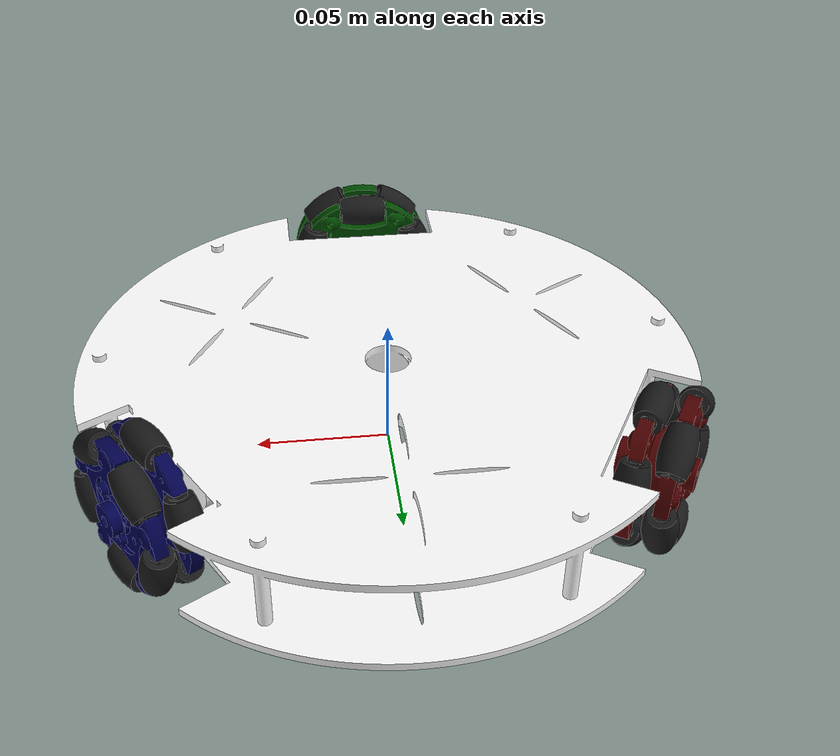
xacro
<?xml version="1.0"?>
<robot xmlns:xacro="http://www.ros.org/wiki/xacro" name="open_base">

	<xacro:include filename="$(find erobotica_omnibot)/urdf/rim.urdf.xacro"/>

	<link name="origin_link"/>
	<link name="base_link">

	<inertial>
		<mass value="0.660"/>
		<inertia
			ixx="0.0029"
			ixy="3.82830626450116e-06"
			ixz="1.95168554660843e-06"
			iyy="0.00368658386788590"
			iyz="0.000245762249215231"
			izz="0.00610900095537055"/>
		</inertial>
	<visual>
	<origin	xyz="0 0 0"  rpy="0 0 0" />
		<geometry>

			<mesh filename="package://erobotica_omnibot/mesh/chassi.stl"/>
		</geometry>
		<material name="base_material">
			<color rgba="1 1 1 1"/>
		</material>
	</visual>
	<collision>
	<origin	xyz="0 0 0"  rpy="0 0 0" />
		<geometry>

			<mesh filename="package://erobotica_omnibot/mesh/chassi.stl"/>
		</geometry>
	</collision>

	</link>
	<joint name="base_joint" type="fixed">
		<parent link="origin_link" />
		<child link="base_link" />
		<origin xyz="0 0 0"/>
	</joint>

	<xacro:rim_macro
		name="left"
		color="0.3 0 0"
		xyz="-0.0893842140 0.051606 0.020272"
		rpy="1.570796326794896 0 1.047197551196597"
	/>
	<xacro:rim_macro
		name="back"
		color="0 0.3 0"
		xyz="0 -0.103212  0.020272"
		rpy="1.570796326794896 0 3.141592653589793"
	/>
	<xacro:rim_macro
		name="right"
		color="0 0 0.3"
		xyz="0.0893842140 0.051606 0.020272"
		rpy="1.570796326794896 0 -1.047197551196597"
	/>

	<gazebo reference="base_link">
    		<material>Gazebo/White</material>
  	</gazebo>

	<gazebo reference="rim_left_link">
    		<material>Gazebo/Red</material>
  	</gazebo>

	<gazebo reference="rim_back_link">
    		<material>Gazebo/Green</material>
  	</gazebo>

	<gazebo reference="rim_right_link">
    		<material>Gazebo/Blue</material>
  	</gazebo>
	<gazebo>
		<plugin name="gazebo_ros_control" filename="libgazebo_ros_control.so">
		<robotNamespace>/open_base</robotNamespace>
		</plugin>
	</gazebo>

</robot>

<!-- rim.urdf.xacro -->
<robot xmlns:xacro="http://www.ros.org/wiki/xacro">

<xacro:include filename="$(find erobotica_omnibot)/urdf/roller.urdf.xacro"/>

<xacro:macro
	name="rim_macro"
	params="name color xyz rpy">

		<link name="rim_${name}_link">
			<inertial>
				<origin xyz="0 0 -0.000343"/>
				<mass value="0.083"/>
				<inertia
					ixx="0.1449e-04"
					ixy="0"
					ixz="0"
					iyy="0.1449e-04"
					iyz="0"
					izz="0.2283e-04"/>

			</inertial>
			<visual>
				<geometry>

					<mesh filename="package://erobotica_omnibot/mesh/roda.stl"/>
				</geometry>
				<material name="rim_${name}_material">
					<color rgba="${color} 1"/>
				</material>
			</visual>
			<collision>
			<!---test -->
				<geometry>
					  <mesh filename="package://erobotica_omnibot/mesh/roda.stl"/>
				</geometry>
			</collision>

		</link>

		<joint
			name="rim_${name}_joint"
			type="continuous">

			<parent link="base_link" />
			<child link="rim_${name}_link" />
			<axis xyz="0 0 020269"/>
			<origin xyz="${xyz}" rpy="${rpy}"/>

		</joint>
		<xacro:roller_macro
			parent="${name}"
			name="upfront"
			xyz="0 0.02406 0.0055"
			rpy="-1.570796326794896 0 1.570796326794896"
		/>
		<xacro:roller_macro
			parent="${name}"
			name="rightupfront"
			xyz=" 0.02288 0.00743 0.0055"
			rpy="-1.570796326794896 0 -2.82743"
		/>
		<xacro:roller_macro
			parent="${name}"
			name="leftupfront"
			xyz=" -0.02288  0.00743 0.0055"
			rpy="-1.570796326794896 0 2.82743"
		/>

		<xacro:roller_macro
			parent="${name}"
			name="rightdownfront"
			xyz="0.01414 -0.01947 0.0055"
			rpy="-1.570796326794896 0 -0.959931"
		/>
		<xacro:roller_macro
			parent="${name}"
			name="lefttdownfront"
			xyz="-0.01414 -0.01947 0.0055"
			rpy="-1.570796326794896 0 0.959931"
		/>

	<!---Back part of the wheel -->

		<xacro:roller_macro
			parent="${name}"
			name="upback"
			xyz="0 -0.02406 -0.0064"
			rpy="-1.570796326794896 0 1.570796326794896"
		/>

	<xacro:roller_macro
			parent="${name}"
			name="rightupback"
			xyz=" -0.02288 -0.00743 -0.0064"
			rpy="-1.570796326794896 0 -2.82743"
		/>
		<xacro:roller_macro
			parent="${name}"
			name="leftupback"
			xyz=" 0.02288 -0.00743 -0.0064"
			rpy="-1.570796326794896 0 2.82743"
		/>

		<xacro:roller_macro
			parent="${name}"
			name="rightdownback"
			xyz="-0.01414 0.01947 -0.0064"
			rpy="-1.570796326794896 0 -0.959931"
		/>
		<xacro:roller_macro
			parent="${name}"
			name="lefttdownback"
			xyz="0.01414  0.01947 -0.0064"
			rpy="-1.570796326794896 0 0.959931"
		/>

		<transmission name="rim_${name}_transmission">
			<type>transmission_interface/SimpleTransmission</type>
			<joint name="rim_${name}_joint">
				<hardwareInterface>hardware_interface/VelocityJointInterface</hardwareInterface>
			</joint>
			<actuator name="rim_${name}_motor">
				<hardwareInterface>hardware_interface/VelocityJointInterface</hardwareInterface>
				<mechanicalReduction>1</mechanicalReduction>
			</actuator>
		</transmission>

	</xacro:macro>

</robot>

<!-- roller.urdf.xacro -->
<robot xmlns:xacro="http://www.ros.org/wiki/xacro">

<xacro:macro
	name="roller_macro"
	params="parent name xyz rpy">

		<link name="roller_${name}_rim_${parent}_link">
			<inertial>
				<mass value="0.001"/>
				<inertia
					ixx="3.976186554728152e-08"
					ixy="0"
					ixz="0"
					iyy="3.976186554728152e-08"
					iyz="0"
					izz="2.092071223656384e-08"/>
			</inertial>
			<visual>
				<geometry>
					<mesh filename="package://erobotica_omnibot/mesh/rolamento.stl"/>
				</geometry>
				<material name="roller_material">
					<color rgba="0.1 0.1 0.1 1"/>
				</material>
			</visual>
			<collision>
				<geometry>
					<mesh filename="package://erobotica_omnibot/mesh/rolamento.stl"/>
				</geometry>
			</collision>
		</link>
	<gazebo reference="roller_${name}_rim_${parent}_link">
    		<material>Gazebo/Black</material>
  	</gazebo>
		<joint name="roller_${name}_rim_${parent}_joint" type="continuous">
			<parent link="rim_${parent}_link"/>
			<child link="roller_${name}_rim_${parent}_link"/>
			<axis xyz="0 0 1"/>
			<origin xyz="${xyz}" rpy="${rpy}"/>

		</joint>
	</xacro:macro>

</robot>
